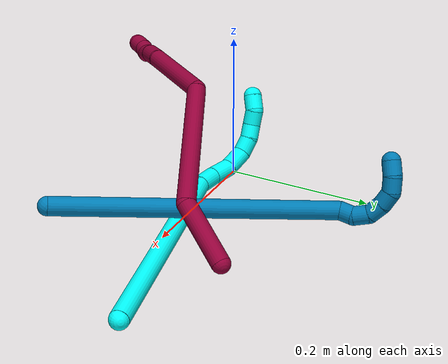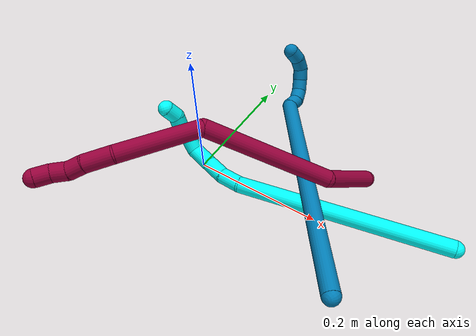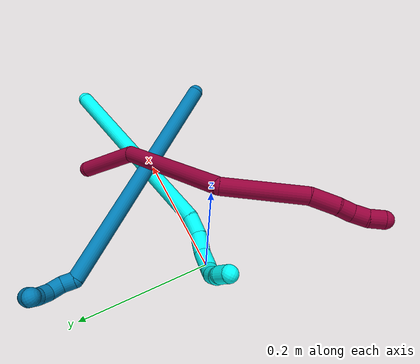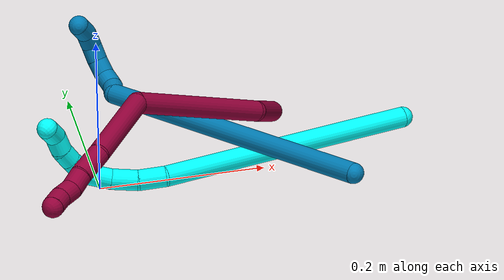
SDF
<sdf version="1.7">
 <world name="default">
  <model name="3">
   <static>0</static>
   <link name="3">
    <collision name="collision-cylinder-e_1_1_4">
     <pose>-0.087012 -0.00966 -0.131867 3.06846 -0.582036 -2.89854</pose>
     <geometry><cylinder><radius>0.0125</radius><length>0.316565</length></cylinder></geometry>
     <surface>
      <friction><ode><mu>1.16</mu><mu2>1.16</mu2><slip1>0</slip1><slip2>0</slip2></ode></friction>
      <contact><ode><kp>1e+06</kp><kd>1</kd><max_vel>0</max_vel><min_depth>0.001</min_depth></ode></contact>
     </surface>
    </collision>
    <visual name="visual-cylinder-e_1_1_4">
     <pose>-0.087012 -0.00966 -0.131867 3.06846 -0.582036 -2.89854</pose>
     <geometry><cylinder><radius>0.0125</radius><length>0.316565</length></cylinder></geometry>
     <material><ambient>0.003922 1 0.996078 1</ambient></material>
    </visual>
    <collision name="collision-cylinder-e_2_4_5">
     <pose>-0.185604 -0.017443 -0.274987 -2.97619 -0.792832 2.7506</pose>
     <geometry><cylinder><radius>0.0125</radius><length>0.032511</length></cylinder></geometry>
     <surface>
      <friction><ode><mu>1.16</mu><mu2>1.16</mu2><slip1>0</slip1><slip2>0</slip2></ode></friction>
      <contact><ode><kp>1e+06</kp><kd>1</kd><max_vel>0</max_vel><min_depth>0.001</min_depth></ode></contact>
     </surface>
    </collision>
    <visual name="visual-cylinder-e_2_4_5">
     <pose>-0.185604 -0.017443 -0.274987 -2.97619 -0.792832 2.7506</pose>
     <geometry><cylinder><radius>0.0125</radius><length>0.032511</length></cylinder></geometry>
     <material><ambient>0.003922 1 0.996078 1</ambient></material>
    </visual>
    <collision name="collision-cylinder-e_3_5_6">
     <pose>-0.210818 -0.013632 -0.294518 -2.91229 -1.01332 2.73241</pose>
     <geometry><cylinder><radius>0.0125</radius><length>0.032135</length></cylinder></geometry>
     <surface>
      <friction><ode><mu>1.16</mu><mu2>1.16</mu2><slip1>0</slip1><slip2>0</slip2></ode></friction>
      <contact><ode><kp>1e+06</kp><kd>1</kd><max_vel>0</max_vel><min_depth>0.001</min_depth></ode></contact>
     </surface>
    </collision>
    <visual name="visual-cylinder-e_3_5_6">
     <pose>-0.210818 -0.013632 -0.294518 -2.91229 -1.01332 2.73241</pose>
     <geometry><cylinder><radius>0.0125</radius><length>0.032135</length></cylinder></geometry>
     <material><ambient>0.003922 1 0.996078 1</ambient></material>
    </visual>
    <collision name="collision-cylinder-e_4_6_7">
     <pose>-0.238617 -0.014403 -0.311241 2.83177 -1.01149 -2.59188</pose>
     <geometry><cylinder><radius>0.0125</radius><length>0.033422</length></cylinder></geometry>
     <surface>
      <friction><ode><mu>1.16</mu><mu2>1.16</mu2><slip1>0</slip1><slip2>0</slip2></ode></friction>
      <contact><ode><kp>1e+06</kp><kd>1</kd><max_vel>0</max_vel><min_depth>0.001</min_depth></ode></contact>
     </surface>
    </collision>
    <visual name="visual-cylinder-e_4_6_7">
     <pose>-0.238617 -0.014403 -0.311241 2.83177 -1.01149 -2.59188</pose>
     <geometry><cylinder><radius>0.0125</radius><length>0.033422</length></cylinder></geometry>
     <material><ambient>0.003922 1 0.996078 1</ambient></material>
    </visual>
    <collision name="collision-cylinder-e_5_7_8">
     <pose>-0.262054 -0.023876 -0.321156 1.78474 -0.929122 -1.11247</pose>
     <geometry><cylinder><radius>0.0125</radius><length>0.023148</length></cylinder></geometry>
     <surface>
      <friction><ode><mu>1.16</mu><mu2>1.16</mu2><slip1>0</slip1><slip2>0</slip2></ode></friction>
      <contact><ode><kp>1e+06</kp><kd>1</kd><max_vel>0</max_vel><min_depth>0.001</min_depth></ode></contact>
     </surface>
    </collision>
    <visual name="visual-cylinder-e_5_7_8">
     <pose>-0.262054 -0.023876 -0.321156 1.78474 -0.929122 -1.11247</pose>
     <geometry><cylinder><radius>0.0125</radius><length>0.023148</length></cylinder></geometry>
     <material><ambient>0.003922 1 0.996078 1</ambient></material>
    </visual>
    <collision name="collision-cylinder-e_6_8_9">
     <pose>-0.277465 -0.038439 -0.324636 1.82314 -0.651703 -0.82242</pose>
     <geometry><cylinder><radius>0.0125</radius><length>0.020244</length></cylinder></geometry>
     <surface>
      <friction><ode><mu>1.16</mu><mu2>1.16</mu2><slip1>0</slip1><slip2>0</slip2></ode></friction>
      <contact><ode><kp>1e+06</kp><kd>1</kd><max_vel>0</max_vel><min_depth>0.001</min_depth></ode></contact>
     </surface>
    </collision>
    <visual name="visual-cylinder-e_6_8_9">
     <pose>-0.277465 -0.038439 -0.324636 1.82314 -0.651703 -0.82242</pose>
     <geometry><cylinder><radius>0.0125</radius><length>0.020244</length></cylinder></geometry>
     <material><ambient>0.003922 1 0.996078 1</ambient></material>
    </visual>
    <collision name="collision-cylinder-e_7_9_10">
     <pose>-0.289471 -0.054807 -0.325971 1.49234 -0.598518 -0.555689</pose>
     <geometry><cylinder><radius>0.0125</radius><length>0.020824</length></cylinder></geometry>
     <surface>
      <friction><ode><mu>1.16</mu><mu2>1.16</mu2><slip1>0</slip1><slip2>0</slip2></ode></friction>
      <contact><ode><kp>1e+06</kp><kd>1</kd><max_vel>0</max_vel><min_depth>0.001</min_depth></ode></contact>
     </surface>
    </collision>
    <visual name="visual-cylinder-e_7_9_10">
     <pose>-0.289471 -0.054807 -0.325971 1.49234 -0.598518 -0.555689</pose>
     <geometry><cylinder><radius>0.0125</radius><length>0.020824</length></cylinder></geometry>
     <material><ambient>0.003922 1 0.996078 1</ambient></material>
    </visual>
    <collision name="collision-cylinder-e_8_10_2">
     <pose>-0.299076 -0.072463 -0.329222 1.97878 -0.361389 -0.542283</pose>
     <geometry><cylinder><radius>0.0125</radius><length>0.021151</length></cylinder></geometry>
     <surface>
      <friction><ode><mu>1.16</mu><mu2>1.16</mu2><slip1>0</slip1><slip2>0</slip2></ode></friction>
      <contact><ode><kp>1e+06</kp><kd>1</kd><max_vel>0</max_vel><min_depth>0.001</min_depth></ode></contact>
     </surface>
    </collision>
    <visual name="visual-cylinder-e_8_10_2">
     <pose>-0.299076 -0.072463 -0.329222 1.97878 -0.361389 -0.542283</pose>
     <geometry><cylinder><radius>0.0125</radius><length>0.021151</length></cylinder></geometry>
     <material><ambient>0.003922 1 0.996078 1</ambient></material>
    </visual>
    <collision name="collision-sphere-2">
     <pose>-0.302815 -0.081543 -0.333147 0 -0 0</pose>
     <geometry><sphere><radius>0.0125</radius></sphere></geometry>
     <surface>
      <friction><ode><mu>1.16</mu><mu2>1.16</mu2><slip1>0</slip1><slip2>0</slip2></ode></friction>
      <contact><ode><kp>1e+06</kp><kd>1</kd><max_vel>0</max_vel><min_depth>0.001</min_depth></ode></contact>
     </surface>
    </collision>
    <visual name="visual-sphere-2">
     <pose>-0.302815 -0.081543 -0.333147 0 -0 0</pose>
     <geometry><sphere><radius>0.0125</radius></sphere></geometry>
     <material><ambient>0.003922 1 0.996078 1</ambient></material>
    </visual>
    <collision name="collision-sphere-10">
     <pose>-0.295337 -0.063382 -0.325297 0 -0 0</pose>
     <geometry><sphere><radius>0.0125</radius></sphere></geometry>
     <surface>
      <friction><ode><mu>1.16</mu><mu2>1.16</mu2><slip1>0</slip1><slip2>0</slip2></ode></friction>
      <contact><ode><kp>1e+06</kp><kd>1</kd><max_vel>0</max_vel><min_depth>0.001</min_depth></ode></contact>
     </surface>
    </collision>
    <visual name="visual-sphere-10">
     <pose>-0.295337 -0.063382 -0.325297 0 -0 0</pose>
     <geometry><sphere><radius>0.0125</radius></sphere></geometry>
     <material><ambient>0.003922 1 0.996078 1</ambient></material>
    </visual>
    <collision name="collision-sphere-9">
     <pose>-0.283604 -0.046231 -0.326645 0 -0 0</pose>
     <geometry><sphere><radius>0.0125</radius></sphere></geometry>
     <surface>
      <friction><ode><mu>1.16</mu><mu2>1.16</mu2><slip1>0</slip1><slip2>0</slip2></ode></friction>
      <contact><ode><kp>1e+06</kp><kd>1</kd><max_vel>0</max_vel><min_depth>0.001</min_depth></ode></contact>
     </surface>
    </collision>
    <visual name="visual-sphere-9">
     <pose>-0.283604 -0.046231 -0.326645 0 -0 0</pose>
     <geometry><sphere><radius>0.0125</radius></sphere></geometry>
     <material><ambient>0.003922 1 0.996078 1</ambient></material>
    </visual>
    <collision name="collision-sphere-4">
     <pose>-0.174024 -0.019321 -0.263734 0 -0 0</pose>
     <geometry><sphere><radius>0.0125</radius></sphere></geometry>
     <surface>
      <friction><ode><mu>1.16</mu><mu2>1.16</mu2><slip1>0</slip1><slip2>0</slip2></ode></friction>
      <contact><ode><kp>1e+06</kp><kd>1</kd><max_vel>0</max_vel><min_depth>0.001</min_depth></ode></contact>
     </surface>
    </collision>
    <visual name="visual-sphere-4">
     <pose>-0.174024 -0.019321 -0.263734 0 -0 0</pose>
     <geometry><sphere><radius>0.0125</radius></sphere></geometry>
     <material><ambient>0.003922 1 0.996078 1</ambient></material>
    </visual>
    <collision name="collision-sphere-1">
     <geometry><sphere><radius>0.0125</radius></sphere></geometry>
     <surface>
      <friction><ode><mu>1.16</mu><mu2>1.16</mu2><slip1>0</slip1><slip2>0</slip2></ode></friction>
      <contact><ode><kp>1e+06</kp><kd>1</kd><max_vel>0</max_vel><min_depth>0.001</min_depth></ode></contact>
     </surface>
    </collision>
    <visual name="visual-sphere-1">
     <geometry><sphere><radius>0.0125</radius></sphere></geometry>
     <material><ambient>0.003922 1 0.996078 1</ambient></material>
    </visual>
    <collision name="collision-sphere-8">
     <pose>-0.271326 -0.030646 -0.322627 0 -0 0</pose>
     <geometry><sphere><radius>0.0125</radius></sphere></geometry>
     <surface>
      <friction><ode><mu>1.16</mu><mu2>1.16</mu2><slip1>0</slip1><slip2>0</slip2></ode></friction>
      <contact><ode><kp>1e+06</kp><kd>1</kd><max_vel>0</max_vel><min_depth>0.001</min_depth></ode></contact>
     </surface>
    </collision>
    <visual name="visual-sphere-8">
     <pose>-0.271326 -0.030646 -0.322627 0 -0 0</pose>
     <geometry><sphere><radius>0.0125</radius></sphere></geometry>
     <material><ambient>0.003922 1 0.996078 1</ambient></material>
    </visual>
    <collision name="collision-sphere-5">
     <pose>-0.197183 -0.015564 -0.28624 0 -0 0</pose>
     <geometry><sphere><radius>0.0125</radius></sphere></geometry>
     <surface>
      <friction><ode><mu>1.16</mu><mu2>1.16</mu2><slip1>0</slip1><slip2>0</slip2></ode></friction>
      <contact><ode><kp>1e+06</kp><kd>1</kd><max_vel>0</max_vel><min_depth>0.001</min_depth></ode></contact>
     </surface>
    </collision>
    <visual name="visual-sphere-5">
     <pose>-0.197183 -0.015564 -0.28624 0 -0 0</pose>
     <geometry><sphere><radius>0.0125</radius></sphere></geometry>
     <material><ambient>0.003922 1 0.996078 1</ambient></material>
    </visual>
    <collision name="collision-sphere-6">
     <pose>-0.224452 -0.0117 -0.302796 0 -0 0</pose>
     <geometry><sphere><radius>0.0125</radius></sphere></geometry>
     <surface>
      <friction><ode><mu>1.16</mu><mu2>1.16</mu2><slip1>0</slip1><slip2>0</slip2></ode></friction>
      <contact><ode><kp>1e+06</kp><kd>1</kd><max_vel>0</max_vel><min_depth>0.001</min_depth></ode></contact>
     </surface>
    </collision>
    <visual name="visual-sphere-6">
     <pose>-0.224452 -0.0117 -0.302796 0 -0 0</pose>
     <geometry><sphere><radius>0.0125</radius></sphere></geometry>
     <material><ambient>0.003922 1 0.996078 1</ambient></material>
    </visual>
    <collision name="collision-sphere-7">
     <pose>-0.252782 -0.017107 -0.319685 0 -0 0</pose>
     <geometry><sphere><radius>0.0125</radius></sphere></geometry>
     <surface>
      <friction><ode><mu>1.16</mu><mu2>1.16</mu2><slip1>0</slip1><slip2>0</slip2></ode></friction>
      <contact><ode><kp>1e+06</kp><kd>1</kd><max_vel>0</max_vel><min_depth>0.001</min_depth></ode></contact>
     </surface>
    </collision>
    <visual name="visual-sphere-7">
     <pose>-0.252782 -0.017107 -0.319685 0 -0 0</pose>
     <geometry><sphere><radius>0.0125</radius></sphere></geometry>
     <material><ambient>0.003922 1 0.996078 1</ambient></material>
    </visual>
    <inertial>
     <pose>-0.144731 -0.017099 -0.196617 0 -0 0</pose>
     <mass>0.5</mass>
     <inertia>
      <ixx>-0.002717</ixx>
      <ixy>0</ixy>
      <ixz>0</ixz>
      <iyy>0.002068</iyy>
      <iyz>0</iyz>
      <izz>0.001615</izz>
     </inertia>
    </inertial>
   </link>
   <pose>0.387066 0.053945 0.011689 -1.27346 0.335595 -0.743394</pose>
  </model>
  <model name="8">
   <static>0</static>
   <link name="8">
    <collision name="collision-cylinder-e_1_1_4">
     <pose>0.00663 0.014984 -0.042146 -2.8 0.147151 -0.807734</pose>
     <geometry><cylinder><radius>0.0125</radius><length>0.090438</length></cylinder></geometry>
     <surface>
      <friction><ode><mu>1.16</mu><mu2>1.16</mu2><slip1>0</slip1><slip2>0</slip2></ode></friction>
      <contact><ode><kp>1e+06</kp><kd>1</kd><max_vel>0</max_vel><min_depth>0.001</min_depth></ode></contact>
     </surface>
    </collision>
    <visual name="visual-cylinder-e_1_1_4">
     <pose>0.00663 0.014984 -0.042146 -2.8 0.147151 -0.807734</pose>
     <geometry><cylinder><radius>0.0125</radius><length>0.090438</length></cylinder></geometry>
     <material><ambient>0.584314 0 0.227451 1</ambient></material>
    </visual>
    <collision name="collision-cylinder-e_2_4_5">
     <pose>0.051345 0.012168 -0.169173 2.93488 0.413779 2.22362</pose>
     <geometry><cylinder><radius>0.0125</radius><length>0.189441</length></cylinder></geometry>
     <surface>
      <friction><ode><mu>1.16</mu><mu2>1.16</mu2><slip1>0</slip1><slip2>0</slip2></ode></friction>
      <contact><ode><kp>1e+06</kp><kd>1</kd><max_vel>0</max_vel><min_depth>0.001</min_depth></ode></contact>
     </surface>
    </collision>
    <visual name="visual-cylinder-e_2_4_5">
     <pose>0.051345 0.012168 -0.169173 2.93488 0.413779 2.22362</pose>
     <geometry><cylinder><radius>0.0125</radius><length>0.189441</length></cylinder></geometry>
     <material><ambient>0.584314 0 0.227451 1</ambient></material>
    </visual>
    <collision name="collision-cylinder-e_3_5_6">
     <pose>0.074978 -0.007377 -0.311368 3.11117 -0.246877 -2.89757</pose>
     <geometry><cylinder><radius>0.0125</radius><length>0.118268</length></cylinder></geometry>
     <surface>
      <friction><ode><mu>1.16</mu><mu2>1.16</mu2><slip1>0</slip1><slip2>0</slip2></ode></friction>
      <contact><ode><kp>1e+06</kp><kd>1</kd><max_vel>0</max_vel><min_depth>0.001</min_depth></ode></contact>
     </surface>
    </collision>
    <visual name="visual-cylinder-e_3_5_6">
     <pose>0.074978 -0.007377 -0.311368 3.11117 -0.246877 -2.89757</pose>
     <geometry><cylinder><radius>0.0125</radius><length>0.118268</length></cylinder></geometry>
     <material><ambient>0.584314 0 0.227451 1</ambient></material>
    </visual>
    <collision name="collision-cylinder-e_4_6_7">
     <pose>0.054882 -0.01447 -0.386482 2.84969 -0.29491 -1.58119</pose>
     <geometry><cylinder><radius>0.0125</radius><length>0.038849</length></cylinder></geometry>
     <surface>
      <friction><ode><mu>1.16</mu><mu2>1.16</mu2><slip1>0</slip1><slip2>0</slip2></ode></friction>
      <contact><ode><kp>1e+06</kp><kd>1</kd><max_vel>0</max_vel><min_depth>0.001</min_depth></ode></contact>
     </surface>
    </collision>
    <visual name="visual-cylinder-e_4_6_7">
     <pose>0.054882 -0.01447 -0.386482 2.84969 -0.29491 -1.58119</pose>
     <geometry><cylinder><radius>0.0125</radius><length>0.038849</length></cylinder></geometry>
     <material><ambient>0.584314 0 0.227451 1</ambient></material>
    </visual>
    <collision name="collision-cylinder-e_5_7_8">
     <pose>0.044753 -0.023594 -0.413233 2.7425 -0.432271 -1.6529</pose>
     <geometry><cylinder><radius>0.0125</radius><length>0.021399</length></cylinder></geometry>
     <surface>
      <friction><ode><mu>1.16</mu><mu2>1.16</mu2><slip1>0</slip1><slip2>0</slip2></ode></friction>
      <contact><ode><kp>1e+06</kp><kd>1</kd><max_vel>0</max_vel><min_depth>0.001</min_depth></ode></contact>
     </surface>
    </collision>
    <visual name="visual-cylinder-e_5_7_8">
     <pose>0.044753 -0.023594 -0.413233 2.7425 -0.432271 -1.6529</pose>
     <geometry><cylinder><radius>0.0125</radius><length>0.021399</length></cylinder></geometry>
     <material><ambient>0.584314 0 0.227451 1</ambient></material>
    </visual>
    <collision name="collision-cylinder-e_6_8_9">
     <pose>0.039199 -0.029807 -0.432276 2.90451 -0.102842 -0.815783</pose>
     <geometry><cylinder><radius>0.0125</radius><length>0.020873</length></cylinder></geometry>
     <surface>
      <friction><ode><mu>1.16</mu><mu2>1.16</mu2><slip1>0</slip1><slip2>0</slip2></ode></friction>
      <contact><ode><kp>1e+06</kp><kd>1</kd><max_vel>0</max_vel><min_depth>0.001</min_depth></ode></contact>
     </surface>
    </collision>
    <visual name="visual-cylinder-e_6_8_9">
     <pose>0.039199 -0.029807 -0.432276 2.90451 -0.102842 -0.815783</pose>
     <geometry><cylinder><radius>0.0125</radius><length>0.020873</length></cylinder></geometry>
     <material><ambient>0.584314 0 0.227451 1</ambient></material>
    </visual>
    <collision name="collision-cylinder-e_7_9_2">
     <pose>0.035819 -0.032354 -0.452472 3.13088 -0.224681 -3.04673</pose>
     <geometry><cylinder><radius>0.0125</radius><length>0.020731</length></cylinder></geometry>
     <surface>
      <friction><ode><mu>1.16</mu><mu2>1.16</mu2><slip1>0</slip1><slip2>0</slip2></ode></friction>
      <contact><ode><kp>1e+06</kp><kd>1</kd><max_vel>0</max_vel><min_depth>0.001</min_depth></ode></contact>
     </surface>
    </collision>
    <visual name="visual-cylinder-e_7_9_2">
     <pose>0.035819 -0.032354 -0.452472 3.13088 -0.224681 -3.04673</pose>
     <geometry><cylinder><radius>0.0125</radius><length>0.020731</length></cylinder></geometry>
     <material><ambient>0.584314 0 0.227451 1</ambient></material>
    </visual>
    <collision name="collision-sphere-2">
     <pose>0.033509 -0.032462 -0.462577 0 -0 0</pose>
     <geometry><sphere><radius>0.0125</radius></sphere></geometry>
     <surface>
      <friction><ode><mu>1.16</mu><mu2>1.16</mu2><slip1>0</slip1><slip2>0</slip2></ode></friction>
      <contact><ode><kp>1e+06</kp><kd>1</kd><max_vel>0</max_vel><min_depth>0.001</min_depth></ode></contact>
     </surface>
    </collision>
    <visual name="visual-sphere-2">
     <pose>0.033509 -0.032462 -0.462577 0 -0 0</pose>
     <geometry><sphere><radius>0.0125</radius></sphere></geometry>
     <material><ambient>0.584314 0 0.227451 1</ambient></material>
    </visual>
    <collision name="collision-sphere-9">
     <pose>0.038128 -0.032246 -0.442367 0 -0 0</pose>
     <geometry><sphere><radius>0.0125</radius></sphere></geometry>
     <surface>
      <friction><ode><mu>1.16</mu><mu2>1.16</mu2><slip1>0</slip1><slip2>0</slip2></ode></friction>
      <contact><ode><kp>1e+06</kp><kd>1</kd><max_vel>0</max_vel><min_depth>0.001</min_depth></ode></contact>
     </surface>
    </collision>
    <visual name="visual-sphere-9">
     <pose>0.038128 -0.032246 -0.442367 0 -0 0</pose>
     <geometry><sphere><radius>0.0125</radius></sphere></geometry>
     <material><ambient>0.584314 0 0.227451 1</ambient></material>
    </visual>
    <collision name="collision-sphere-4">
     <pose>0.01326 0.029968 -0.084292 0 -0 0</pose>
     <geometry><sphere><radius>0.0125</radius></sphere></geometry>
     <surface>
      <friction><ode><mu>1.16</mu><mu2>1.16</mu2><slip1>0</slip1><slip2>0</slip2></ode></friction>
      <contact><ode><kp>1e+06</kp><kd>1</kd><max_vel>0</max_vel><min_depth>0.001</min_depth></ode></contact>
     </surface>
    </collision>
    <visual name="visual-sphere-4">
     <pose>0.01326 0.029968 -0.084292 0 -0 0</pose>
     <geometry><sphere><radius>0.0125</radius></sphere></geometry>
     <material><ambient>0.584314 0 0.227451 1</ambient></material>
    </visual>
    <collision name="collision-sphere-1">
     <geometry><sphere><radius>0.0125</radius></sphere></geometry>
     <surface>
      <friction><ode><mu>1.16</mu><mu2>1.16</mu2><slip1>0</slip1><slip2>0</slip2></ode></friction>
      <contact><ode><kp>1e+06</kp><kd>1</kd><max_vel>0</max_vel><min_depth>0.001</min_depth></ode></contact>
     </surface>
    </collision>
    <visual name="visual-sphere-1">
     <geometry><sphere><radius>0.0125</radius></sphere></geometry>
     <material><ambient>0.584314 0 0.227451 1</ambient></material>
    </visual>
    <collision name="collision-sphere-8">
     <pose>0.040271 -0.027369 -0.422185 0 -0 0</pose>
     <geometry><sphere><radius>0.0125</radius></sphere></geometry>
     <surface>
      <friction><ode><mu>1.16</mu><mu2>1.16</mu2><slip1>0</slip1><slip2>0</slip2></ode></friction>
      <contact><ode><kp>1e+06</kp><kd>1</kd><max_vel>0</max_vel><min_depth>0.001</min_depth></ode></contact>
     </surface>
    </collision>
    <visual name="visual-sphere-8">
     <pose>0.040271 -0.027369 -0.422185 0 -0 0</pose>
     <geometry><sphere><radius>0.0125</radius></sphere></geometry>
     <material><ambient>0.584314 0 0.227451 1</ambient></material>
    </visual>
    <collision name="collision-sphere-5">
     <pose>0.089429 -0.005633 -0.254053 0 -0 0</pose>
     <geometry><sphere><radius>0.0125</radius></sphere></geometry>
     <surface>
      <friction><ode><mu>1.16</mu><mu2>1.16</mu2><slip1>0</slip1><slip2>0</slip2></ode></friction>
      <contact><ode><kp>1e+06</kp><kd>1</kd><max_vel>0</max_vel><min_depth>0.001</min_depth></ode></contact>
     </surface>
    </collision>
    <visual name="visual-sphere-5">
     <pose>0.089429 -0.005633 -0.254053 0 -0 0</pose>
     <geometry><sphere><radius>0.0125</radius></sphere></geometry>
     <material><ambient>0.584314 0 0.227451 1</ambient></material>
    </visual>
    <collision name="collision-sphere-6">
     <pose>0.060527 -0.009121 -0.368682 0 -0 0</pose>
     <geometry><sphere><radius>0.0125</radius></sphere></geometry>
     <surface>
      <friction><ode><mu>1.16</mu><mu2>1.16</mu2><slip1>0</slip1><slip2>0</slip2></ode></friction>
      <contact><ode><kp>1e+06</kp><kd>1</kd><max_vel>0</max_vel><min_depth>0.001</min_depth></ode></contact>
     </surface>
    </collision>
    <visual name="visual-sphere-6">
     <pose>0.060527 -0.009121 -0.368682 0 -0 0</pose>
     <geometry><sphere><radius>0.0125</radius></sphere></geometry>
     <material><ambient>0.584314 0 0.227451 1</ambient></material>
    </visual>
    <collision name="collision-sphere-7">
     <pose>0.049236 -0.019819 -0.404281 0 -0 0</pose>
     <geometry><sphere><radius>0.0125</radius></sphere></geometry>
     <surface>
      <friction><ode><mu>1.16</mu><mu2>1.16</mu2><slip1>0</slip1><slip2>0</slip2></ode></friction>
      <contact><ode><kp>1e+06</kp><kd>1</kd><max_vel>0</max_vel><min_depth>0.001</min_depth></ode></contact>
     </surface>
    </collision>
    <visual name="visual-sphere-7">
     <pose>0.049236 -0.019819 -0.404281 0 -0 0</pose>
     <geometry><sphere><radius>0.0125</radius></sphere></geometry>
     <material><ambient>0.584314 0 0.227451 1</ambient></material>
    </visual>
    <inertial>
     <pose>0.047689 0.000855 -0.229891 0 -0 0</pose>
     <mass>0.5</mass>
     <inertia>
      <ixx>-7.8e-05</ixx>
      <ixy>0</ixy>
      <ixz>0</ixz>
      <iyy>0.000805</iyy>
      <iyz>0</iyz>
      <izz>-0.000145</izz>
     </inertia>
    </inertial>
   </link>
   <pose>0.235495 0.102865 0.011898 1.94074 -0.892322 2.14066</pose>
  </model>
  <model name="9">
   <static>0</static>
   <link name="9">
    <collision name="collision-cylinder-e_1_1_4">
     <pose>-0.032281 0.138185 0.123895 -0.839867 -0.172213 0.077044</pose>
     <geometry><cylinder><radius>0.0125</radius><length>0.37676</length></cylinder></geometry>
     <surface>
      <friction><ode><mu>1.16</mu><mu2>1.16</mu2><slip1>0</slip1><slip2>0</slip2></ode></friction>
      <contact><ode><kp>1e+06</kp><kd>1</kd><max_vel>0</max_vel><min_depth>0.001</min_depth></ode></contact>
     </surface>
    </collision>
    <visual name="visual-cylinder-e_1_1_4">
     <pose>-0.032281 0.138185 0.123895 -0.839867 -0.172213 0.077044</pose>
     <geometry><cylinder><radius>0.0125</radius><length>0.37676</length></cylinder></geometry>
     <material><ambient>0 0.490196 0.709804 1</ambient></material>
    </visual>
    <collision name="collision-cylinder-e_2_4_5">
     <pose>-0.067899 0.277215 0.257247 -0.089205 -0.337899 0.015226</pose>
     <geometry><cylinder><radius>0.0125</radius><length>0.020126</length></cylinder></geometry>
     <surface>
      <friction><ode><mu>1.16</mu><mu2>1.16</mu2><slip1>0</slip1><slip2>0</slip2></ode></friction>
      <contact><ode><kp>1e+06</kp><kd>1</kd><max_vel>0</max_vel><min_depth>0.001</min_depth></ode></contact>
     </surface>
    </collision>
    <visual name="visual-cylinder-e_2_4_5">
     <pose>-0.067899 0.277215 0.257247 -0.089205 -0.337899 0.015226</pose>
     <geometry><cylinder><radius>0.0125</radius><length>0.020126</length></cylinder></geometry>
     <material><ambient>0 0.490196 0.709804 1</ambient></material>
    </visual>
    <collision name="collision-cylinder-e_3_5_6">
     <pose>-0.077322 0.28282 0.27404 -0.575416 -0.60803 0.185153</pose>
     <geometry><cylinder><radius>0.0125</radius><length>0.021311</length></cylinder></geometry>
     <surface>
      <friction><ode><mu>1.16</mu><mu2>1.16</mu2><slip1>0</slip1><slip2>0</slip2></ode></friction>
      <contact><ode><kp>1e+06</kp><kd>1</kd><max_vel>0</max_vel><min_depth>0.001</min_depth></ode></contact>
     </surface>
    </collision>
    <visual name="visual-cylinder-e_3_5_6">
     <pose>-0.077322 0.28282 0.27404 -0.575416 -0.60803 0.185153</pose>
     <geometry><cylinder><radius>0.0125</radius><length>0.021311</length></cylinder></geometry>
     <material><ambient>0 0.490196 0.709804 1</ambient></material>
    </visual>
    <collision name="collision-cylinder-e_4_6_7">
     <pose>-0.092432 0.292029 0.283961 -1.04481 -1.05263 0.645601</pose>
     <geometry><cylinder><radius>0.0125</radius><length>0.020774</length></cylinder></geometry>
     <surface>
      <friction><ode><mu>1.16</mu><mu2>1.16</mu2><slip1>0</slip1><slip2>0</slip2></ode></friction>
      <contact><ode><kp>1e+06</kp><kd>1</kd><max_vel>0</max_vel><min_depth>0.001</min_depth></ode></contact>
     </surface>
    </collision>
    <visual name="visual-cylinder-e_4_6_7">
     <pose>-0.092432 0.292029 0.283961 -1.04481 -1.05263 0.645601</pose>
     <geometry><cylinder><radius>0.0125</radius><length>0.020774</length></cylinder></geometry>
     <material><ambient>0 0.490196 0.709804 1</ambient></material>
    </visual>
    <collision name="collision-cylinder-e_5_7_8">
     <pose>-0.111044 0.300127 0.286593 -1.55741 -1.20709 1.19461</pose>
     <geometry><cylinder><radius>0.0125</radius><length>0.020519</length></cylinder></geometry>
     <surface>
      <friction><ode><mu>1.16</mu><mu2>1.16</mu2><slip1>0</slip1><slip2>0</slip2></ode></friction>
      <contact><ode><kp>1e+06</kp><kd>1</kd><max_vel>0</max_vel><min_depth>0.001</min_depth></ode></contact>
     </surface>
    </collision>
    <visual name="visual-cylinder-e_5_7_8">
     <pose>-0.111044 0.300127 0.286593 -1.55741 -1.20709 1.19461</pose>
     <geometry><cylinder><radius>0.0125</radius><length>0.020519</length></cylinder></geometry>
     <material><ambient>0 0.490196 0.709804 1</ambient></material>
    </visual>
    <collision name="collision-cylinder-e_6_8_9">
     <pose>-0.128748 0.306849 0.281304 -2.61929 -0.921589 2.1539</pose>
     <geometry><cylinder><radius>0.0125</radius><length>0.020376</length></cylinder></geometry>
     <surface>
      <friction><ode><mu>1.16</mu><mu2>1.16</mu2><slip1>0</slip1><slip2>0</slip2></ode></friction>
      <contact><ode><kp>1e+06</kp><kd>1</kd><max_vel>0</max_vel><min_depth>0.001</min_depth></ode></contact>
     </surface>
    </collision>
    <visual name="visual-cylinder-e_6_8_9">
     <pose>-0.128748 0.306849 0.281304 -2.61929 -0.921589 2.1539</pose>
     <geometry><cylinder><radius>0.0125</radius><length>0.020376</length></cylinder></geometry>
     <material><ambient>0 0.490196 0.709804 1</ambient></material>
    </visual>
    <collision name="collision-cylinder-e_7_9_2">
     <pose>-0.142441 0.314277 0.268807 -2.59506 -0.587266 1.6466</pose>
     <geometry><cylinder><radius>0.0125</radius><length>0.020133</length></cylinder></geometry>
     <surface>
      <friction><ode><mu>1.16</mu><mu2>1.16</mu2><slip1>0</slip1><slip2>0</slip2></ode></friction>
      <contact><ode><kp>1e+06</kp><kd>1</kd><max_vel>0</max_vel><min_depth>0.001</min_depth></ode></contact>
     </surface>
    </collision>
    <visual name="visual-cylinder-e_7_9_2">
     <pose>-0.142441 0.314277 0.268807 -2.59506 -0.587266 1.6466</pose>
     <geometry><cylinder><radius>0.0125</radius><length>0.020133</length></cylinder></geometry>
     <material><ambient>0 0.490196 0.709804 1</ambient></material>
    </visual>
    <collision name="collision-sphere-2">
     <pose>-0.148019 0.318633 0.261647 0 -0 0</pose>
     <geometry><sphere><radius>0.0125</radius></sphere></geometry>
     <surface>
      <friction><ode><mu>1.16</mu><mu2>1.16</mu2><slip1>0</slip1><slip2>0</slip2></ode></friction>
      <contact><ode><kp>1e+06</kp><kd>1</kd><max_vel>0</max_vel><min_depth>0.001</min_depth></ode></contact>
     </surface>
    </collision>
    <visual name="visual-sphere-2">
     <pose>-0.148019 0.318633 0.261647 0 -0 0</pose>
     <geometry><sphere><radius>0.0125</radius></sphere></geometry>
     <material><ambient>0 0.490196 0.709804 1</ambient></material>
    </visual>
    <collision name="collision-sphere-9">
     <pose>-0.136863 0.309922 0.275966 0 -0 0</pose>
     <geometry><sphere><radius>0.0125</radius></sphere></geometry>
     <surface>
      <friction><ode><mu>1.16</mu><mu2>1.16</mu2><slip1>0</slip1><slip2>0</slip2></ode></friction>
      <contact><ode><kp>1e+06</kp><kd>1</kd><max_vel>0</max_vel><min_depth>0.001</min_depth></ode></contact>
     </surface>
    </collision>
    <visual name="visual-sphere-9">
     <pose>-0.136863 0.309922 0.275966 0 -0 0</pose>
     <geometry><sphere><radius>0.0125</radius></sphere></geometry>
     <material><ambient>0 0.490196 0.709804 1</ambient></material>
    </visual>
    <collision name="collision-sphere-4">
     <pose>-0.064563 0.276369 0.24779 0 -0 0</pose>
     <geometry><sphere><radius>0.0125</radius></sphere></geometry>
     <surface>
      <friction><ode><mu>1.16</mu><mu2>1.16</mu2><slip1>0</slip1><slip2>0</slip2></ode></friction>
      <contact><ode><kp>1e+06</kp><kd>1</kd><max_vel>0</max_vel><min_depth>0.001</min_depth></ode></contact>
     </surface>
    </collision>
    <visual name="visual-sphere-4">
     <pose>-0.064563 0.276369 0.24779 0 -0 0</pose>
     <geometry><sphere><radius>0.0125</radius></sphere></geometry>
     <material><ambient>0 0.490196 0.709804 1</ambient></material>
    </visual>
    <collision name="collision-sphere-1">
     <geometry><sphere><radius>0.0125</radius></sphere></geometry>
     <surface>
      <friction><ode><mu>1.16</mu><mu2>1.16</mu2><slip1>0</slip1><slip2>0</slip2></ode></friction>
      <contact><ode><kp>1e+06</kp><kd>1</kd><max_vel>0</max_vel><min_depth>0.001</min_depth></ode></contact>
     </surface>
    </collision>
    <visual name="visual-sphere-1">
     <geometry><sphere><radius>0.0125</radius></sphere></geometry>
     <material><ambient>0 0.490196 0.709804 1</ambient></material>
    </visual>
    <collision name="collision-sphere-8">
     <pose>-0.120633 0.303777 0.286642 0 -0 0</pose>
     <geometry><sphere><radius>0.0125</radius></sphere></geometry>
     <surface>
      <friction><ode><mu>1.16</mu><mu2>1.16</mu2><slip1>0</slip1><slip2>0</slip2></ode></friction>
      <contact><ode><kp>1e+06</kp><kd>1</kd><max_vel>0</max_vel><min_depth>0.001</min_depth></ode></contact>
     </surface>
    </collision>
    <visual name="visual-sphere-8">
     <pose>-0.120633 0.303777 0.286642 0 -0 0</pose>
     <geometry><sphere><radius>0.0125</radius></sphere></geometry>
     <material><ambient>0 0.490196 0.709804 1</ambient></material>
    </visual>
    <collision name="collision-sphere-5">
     <pose>-0.071235 0.278061 0.266703 0 -0 0</pose>
     <geometry><sphere><radius>0.0125</radius></sphere></geometry>
     <surface>
      <friction><ode><mu>1.16</mu><mu2>1.16</mu2><slip1>0</slip1><slip2>0</slip2></ode></friction>
      <contact><ode><kp>1e+06</kp><kd>1</kd><max_vel>0</max_vel><min_depth>0.001</min_depth></ode></contact>
     </surface>
    </collision>
    <visual name="visual-sphere-5">
     <pose>-0.071235 0.278061 0.266703 0 -0 0</pose>
     <geometry><sphere><radius>0.0125</radius></sphere></geometry>
     <material><ambient>0 0.490196 0.709804 1</ambient></material>
    </visual>
    <collision name="collision-sphere-6">
     <pose>-0.083409 0.287579 0.281378 0 -0 0</pose>
     <geometry><sphere><radius>0.0125</radius></sphere></geometry>
     <surface>
      <friction><ode><mu>1.16</mu><mu2>1.16</mu2><slip1>0</slip1><slip2>0</slip2></ode></friction>
      <contact><ode><kp>1e+06</kp><kd>1</kd><max_vel>0</max_vel><min_depth>0.001</min_depth></ode></contact>
     </surface>
    </collision>
    <visual name="visual-sphere-6">
     <pose>-0.083409 0.287579 0.281378 0 -0 0</pose>
     <geometry><sphere><radius>0.0125</radius></sphere></geometry>
     <material><ambient>0 0.490196 0.709804 1</ambient></material>
    </visual>
    <collision name="collision-sphere-7">
     <pose>-0.101456 0.296478 0.286544 0 -0 0</pose>
     <geometry><sphere><radius>0.0125</radius></sphere></geometry>
     <surface>
      <friction><ode><mu>1.16</mu><mu2>1.16</mu2><slip1>0</slip1><slip2>0</slip2></ode></friction>
      <contact><ode><kp>1e+06</kp><kd>1</kd><max_vel>0</max_vel><min_depth>0.001</min_depth></ode></contact>
     </surface>
    </collision>
    <visual name="visual-sphere-7">
     <pose>-0.101456 0.296478 0.286544 0 -0 0</pose>
     <geometry><sphere><radius>0.0125</radius></sphere></geometry>
     <material><ambient>0 0.490196 0.709804 1</ambient></material>
    </visual>
    <inertial>
     <pose>-0.049733 0.176947 0.161239 0 -0 0</pose>
     <mass>0.5</mass>
     <inertia>
      <ixx>0.004726</ixx>
      <ixy>0</ixy>
      <ixz>0</ixz>
      <iyy>0.003394</iyy>
      <iyz>0</iyz>
      <izz>-0.00249</izz>
     </inertia>
    </inertial>
   </link>
   <pose>0.2779 -0.117658 0.055287 3.12703 1.14805 -1.7782</pose>
  </model>
 </world>
</sdf>
